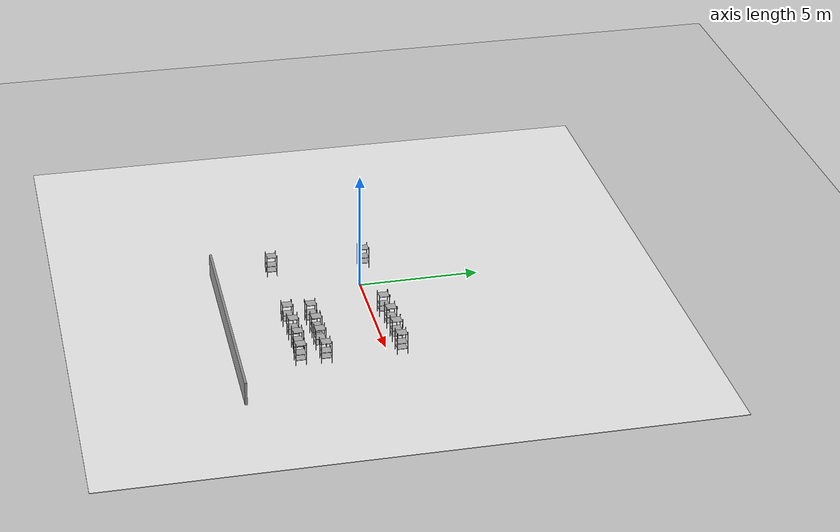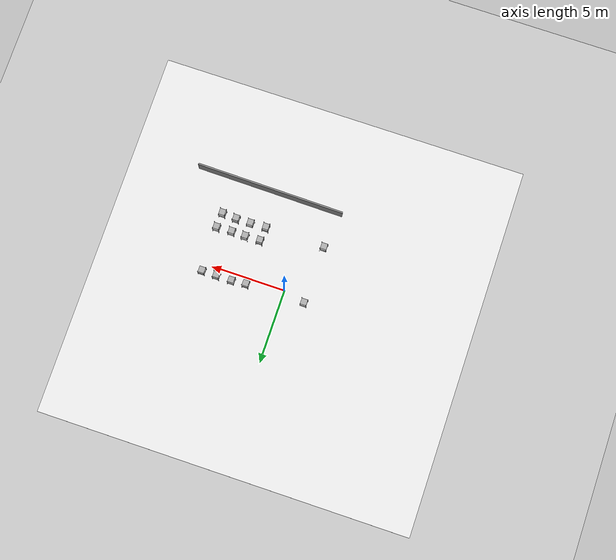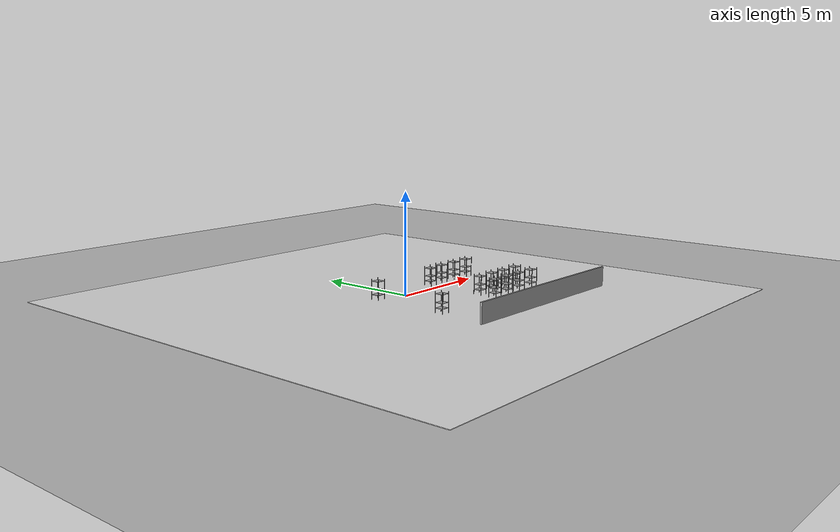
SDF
<sdf version="1.7">
 <world name="default">
  <model name="ground_plane">
   <static>1</static>
   <link name="link">
    <collision name="collision">
     <geometry><plane><normal>0 0 1</normal><size>100 100</size></plane></geometry>
     <surface><friction><ode><mu>100</mu><mu2>50</mu2></ode></friction></surface>
    </collision>
    <visual name="visual">
     <cast_shadows>0</cast_shadows>
     <geometry><plane><normal>0 0 1</normal><size>100 100</size></plane></geometry>
     <material>
      <script><uri>file://media/materials/scripts/gazebo.material</uri><name>Gazebo/Grey</name></script>
     </material>
    </visual>
   </link>
  </model>
  <model name="warehouse_ground">
   <static>1</static>
   <link name="link">
    <pose>0 0 0.01 0 -0 0</pose>
    <collision name="collision">
     <geometry><plane><normal>0 0 1</normal><size>25 25</size></plane></geometry>
     <surface><friction><ode><mu>1</mu><mu2>1</mu2></ode></friction></surface>
    </collision>
    <visual name="visual">
     <geometry><plane><normal>0 0 1</normal><size>25 25</size></plane></geometry>
     <material>
      <ambient>0.95 0.95 0.95 1</ambient>
      <diffuse>0.95 0.95 0.95 1</diffuse>
      <specular>0.1 0.1 0.1 1</specular>
      <emissive>0 0 0 1</emissive>
     </material>
    </visual>
   </link>
  </model>
  <model name="wall_1_clone_clone_clone_0">
   <link name="wall">
    <visual name="visual">
     <geometry><box><size>10 0.1 2</size></box></geometry>
     <material>
      <ambient>0.6 0.6 0.6 1</ambient>
      <shader type="pixel"/>
      <script><name>ModelPreview_1::wall::visual_MATERIAL_</name><uri>__default__</uri></script>
     </material>
    </visual>
    <collision name="collision">
     <geometry><box><size>10 0.1 2</size></box></geometry>
     <surface>
      <friction>
       <ode><mu>1</mu><mu2>1</mu2><fdir1>0 0 0</fdir1><slip1>0</slip1><slip2>0</slip2></ode>
       <torsional>
        <coefficient>1</coefficient>
        <patch_radius>0</patch_radius>
        <surface_radius>0</surface_radius>
        <use_patch_radius>1</use_patch_radius>
        <ode><slip>0</slip></ode>
       </torsional>
      </friction>
      <bounce><restitution_coefficient>0</restitution_coefficient><threshold>1e+06</threshold></bounce>
      <contact>
       <collide_without_contact>0</collide_without_contact>
       <collide_without_contact_bitmask>1</collide_without_contact_bitmask>
       <collide_bitmask>1</collide_bitmask>
       <ode>
        <soft_cfm>0</soft_cfm>
        <soft_erp>0.2</soft_erp>
        <kp>1e+13</kp>
        <kd>1</kd>
        <max_vel>0.01</max_vel>
        <min_depth>0</min_depth>
       </ode>
       <bullet>
        <split_impulse>1</split_impulse>
        <split_impulse_penetration_threshold>-0.01</split_impulse_penetration_threshold>
        <soft_cfm>0</soft_cfm>
        <soft_erp>0.2</soft_erp>
        <kp>1e+13</kp>
        <kd>1</kd>
       </bullet>
      </contact>
     </surface>
    </collision>
   </link>
   <static>1</static>
   <pose>3 -6 0 0 0 -0.012854</pose>
  </model>
  <model name="square_shelf_0_clone_10">
   <link name="link">
    <visual name="bottom_shelf_visual">
     <geometry><box><size>0.4 0.4 0.02</size></box></geometry>
     <pose>0 0 0.25 0 -0 0</pose>
     <material><ambient>0.6 0.6 0.6 1</ambient><diffuse>0.7 0.7 0.7 1</diffuse></material>
    </visual>
    <collision name="bottom_shelf_collision">
     <geometry><box><size>0.4 0.4 0.02</size></box></geometry>
     <pose>0 0 0.25 0 -0 0</pose>
    </collision>
    <visual name="middle_shelf_visual">
     <geometry><box><size>0.4 0.4 0.02</size></box></geometry>
     <pose>0 0 0.5 0 -0 0</pose>
     <material><ambient>0.6 0.6 0.6 1</ambient><diffuse>0.7 0.7 0.7 1</diffuse></material>
    </visual>
    <collision name="middle_shelf_collision">
     <geometry><box><size>0.4 0.4 0.02</size></box></geometry>
     <pose>0 0 0.5 0 -0 0</pose>
    </collision>
    <visual name="top_shelf_visual">
     <geometry><box><size>0.4 0.4 0.02</size></box></geometry>
     <pose>0 0 0.9 0 -0 0</pose>
     <material><ambient>0.6 0.6 0.6 1</ambient><diffuse>0.7 0.7 0.7 1</diffuse></material>
    </visual>
    <collision name="top_shelf_collision">
     <geometry><box><size>0.4 0.4 0.02</size></box></geometry>
     <pose>0 0 0.9 0 -0 0</pose>
    </collision>
    <visual name="left_support_visual">
     <geometry><box><size>0.02 0.02 1</size></box></geometry>
     <pose>-0.21 -0.21 0.5 0 -0 0</pose>
     <material><ambient>0.3 0.3 0.3 1</ambient><diffuse>0.3 0.3 0.3 1</diffuse></material>
    </visual>
    <collision name="left_support_collision">
     <geometry><box><size>0.02 0.02 1</size></box></geometry>
     <pose>-0.21 -0.21 0.5 0 -0 0</pose>
    </collision>
    <visual name="right_support_visual">
     <geometry><box><size>0.02 0.02 1</size></box></geometry>
     <pose>0.21 -0.21 0.5 0 -0 0</pose>
     <material><ambient>0.3 0.3 0.3 1</ambient><diffuse>0.3 0.3 0.3 1</diffuse></material>
    </visual>
    <collision name="right_support_collision">
     <geometry><box><size>0.02 0.02 1</size></box></geometry>
     <pose>0.21 -0.21 0.5 0 -0 0</pose>
    </collision>
    <visual name="front_left_support_visual">
     <geometry><box><size>0.02 0.02 1</size></box></geometry>
     <pose>-0.21 0.21 0.5 0 -0 0</pose>
     <material><ambient>0.3 0.3 0.3 1</ambient><diffuse>0.3 0.3 0.3 1</diffuse></material>
    </visual>
    <collision name="front_left_support_collision">
     <geometry><box><size>0.02 0.02 1</size></box></geometry>
     <pose>-0.21 0.21 0.5 0 -0 0</pose>
    </collision>
    <visual name="front_right_support_visual">
     <geometry><box><size>0.02 0.02 1</size></box></geometry>
     <pose>0.21 0.21 0.5 0 -0 0</pose>
     <material><ambient>0.3 0.3 0.3 1</ambient><diffuse>0.3 0.3 0.3 1</diffuse></material>
    </visual>
    <collision name="front_right_support_collision">
     <geometry><box><size>0.02 0.02 1</size></box></geometry>
     <pose>0.21 0.21 0.5 0 -0 0</pose>
    </collision>
    <inertial>
     <inertia><ixx>1</ixx><ixy>0</ixy><ixz>0</ixz><iyy>1</iyy><iyz>0</iyz><izz>1</izz></inertia>
     <mass>1</mass>
    </inertial>
   </link>
   <pose>-1.46889 0.444983 0.01 0 1e-06 0</pose>
  </model>
  <model name="square_shelf_0_clone_12">
   <link name="link">
    <visual name="bottom_shelf_visual">
     <geometry><box><size>0.4 0.4 0.02</size></box></geometry>
     <pose>0 0 0.25 0 -0 0</pose>
     <material><ambient>0.6 0.6 0.6 1</ambient><diffuse>0.7 0.7 0.7 1</diffuse></material>
    </visual>
    <collision name="bottom_shelf_collision">
     <geometry><box><size>0.4 0.4 0.02</size></box></geometry>
     <pose>0 0 0.25 0 -0 0</pose>
    </collision>
    <visual name="middle_shelf_visual">
     <geometry><box><size>0.4 0.4 0.02</size></box></geometry>
     <pose>0 0 0.5 0 -0 0</pose>
     <material><ambient>0.6 0.6 0.6 1</ambient><diffuse>0.7 0.7 0.7 1</diffuse></material>
    </visual>
    <collision name="middle_shelf_collision">
     <geometry><box><size>0.4 0.4 0.02</size></box></geometry>
     <pose>0 0 0.5 0 -0 0</pose>
    </collision>
    <visual name="top_shelf_visual">
     <geometry><box><size>0.4 0.4 0.02</size></box></geometry>
     <pose>0 0 0.9 0 -0 0</pose>
     <material><ambient>0.6 0.6 0.6 1</ambient><diffuse>0.7 0.7 0.7 1</diffuse></material>
    </visual>
    <collision name="top_shelf_collision">
     <geometry><box><size>0.4 0.4 0.02</size></box></geometry>
     <pose>0 0 0.9 0 -0 0</pose>
    </collision>
    <visual name="left_support_visual">
     <geometry><box><size>0.02 0.02 1</size></box></geometry>
     <pose>-0.21 -0.21 0.5 0 -0 0</pose>
     <material><ambient>0.3 0.3 0.3 1</ambient><diffuse>0.3 0.3 0.3 1</diffuse></material>
    </visual>
    <collision name="left_support_collision">
     <geometry><box><size>0.02 0.02 1</size></box></geometry>
     <pose>-0.21 -0.21 0.5 0 -0 0</pose>
    </collision>
    <visual name="right_support_visual">
     <geometry><box><size>0.02 0.02 1</size></box></geometry>
     <pose>0.21 -0.21 0.5 0 -0 0</pose>
     <material><ambient>0.3 0.3 0.3 1</ambient><diffuse>0.3 0.3 0.3 1</diffuse></material>
    </visual>
    <collision name="right_support_collision">
     <geometry><box><size>0.02 0.02 1</size></box></geometry>
     <pose>0.21 -0.21 0.5 0 -0 0</pose>
    </collision>
    <visual name="front_left_support_visual">
     <geometry><box><size>0.02 0.02 1</size></box></geometry>
     <pose>-0.21 0.21 0.5 0 -0 0</pose>
     <material><ambient>0.3 0.3 0.3 1</ambient><diffuse>0.3 0.3 0.3 1</diffuse></material>
    </visual>
    <collision name="front_left_support_collision">
     <geometry><box><size>0.02 0.02 1</size></box></geometry>
     <pose>-0.21 0.21 0.5 0 -0 0</pose>
    </collision>
    <visual name="front_right_support_visual">
     <geometry><box><size>0.02 0.02 1</size></box></geometry>
     <pose>0.21 0.21 0.5 0 -0 0</pose>
     <material><ambient>0.3 0.3 0.3 1</ambient><diffuse>0.3 0.3 0.3 1</diffuse></material>
    </visual>
    <collision name="front_right_support_collision">
     <geometry><box><size>0.02 0.02 1</size></box></geometry>
     <pose>0.21 0.21 0.5 0 -0 0</pose>
    </collision>
    <inertial>
     <inertia><ixx>1</ixx><ixy>0</ixy><ixz>0</ixz><iyy>1</iyy><iyz>0</iyz><izz>1</izz></inertia>
     <mass>1</mass>
    </inertial>
   </link>
   <pose>-1.54332 -3.45509 0.01 1e-06 -0 0</pose>
  </model>
  <model name="square_shelf_0_clone_13">
   <link name="link">
    <visual name="bottom_shelf_visual">
     <geometry><box><size>0.4 0.4 0.02</size></box></geometry>
     <pose>0 0 0.25 0 -0 0</pose>
     <material><ambient>0.6 0.6 0.6 1</ambient><diffuse>0.7 0.7 0.7 1</diffuse></material>
    </visual>
    <collision name="bottom_shelf_collision">
     <geometry><box><size>0.4 0.4 0.02</size></box></geometry>
     <pose>0 0 0.25 0 -0 0</pose>
    </collision>
    <visual name="middle_shelf_visual">
     <geometry><box><size>0.4 0.4 0.02</size></box></geometry>
     <pose>0 0 0.5 0 -0 0</pose>
     <material><ambient>0.6 0.6 0.6 1</ambient><diffuse>0.7 0.7 0.7 1</diffuse></material>
    </visual>
    <collision name="middle_shelf_collision">
     <geometry><box><size>0.4 0.4 0.02</size></box></geometry>
     <pose>0 0 0.5 0 -0 0</pose>
    </collision>
    <visual name="top_shelf_visual">
     <geometry><box><size>0.4 0.4 0.02</size></box></geometry>
     <pose>0 0 0.9 0 -0 0</pose>
     <material><ambient>0.6 0.6 0.6 1</ambient><diffuse>0.7 0.7 0.7 1</diffuse></material>
    </visual>
    <collision name="top_shelf_collision">
     <geometry><box><size>0.4 0.4 0.02</size></box></geometry>
     <pose>0 0 0.9 0 -0 0</pose>
    </collision>
    <visual name="left_support_visual">
     <geometry><box><size>0.02 0.02 1</size></box></geometry>
     <pose>-0.21 -0.21 0.5 0 -0 0</pose>
     <material><ambient>0.3 0.3 0.3 1</ambient><diffuse>0.3 0.3 0.3 1</diffuse></material>
    </visual>
    <collision name="left_support_collision">
     <geometry><box><size>0.02 0.02 1</size></box></geometry>
     <pose>-0.21 -0.21 0.5 0 -0 0</pose>
    </collision>
    <visual name="right_support_visual">
     <geometry><box><size>0.02 0.02 1</size></box></geometry>
     <pose>0.21 -0.21 0.5 0 -0 0</pose>
     <material><ambient>0.3 0.3 0.3 1</ambient><diffuse>0.3 0.3 0.3 1</diffuse></material>
    </visual>
    <collision name="right_support_collision">
     <geometry><box><size>0.02 0.02 1</size></box></geometry>
     <pose>0.21 -0.21 0.5 0 -0 0</pose>
    </collision>
    <visual name="front_left_support_visual">
     <geometry><box><size>0.02 0.02 1</size></box></geometry>
     <pose>-0.21 0.21 0.5 0 -0 0</pose>
     <material><ambient>0.3 0.3 0.3 1</ambient><diffuse>0.3 0.3 0.3 1</diffuse></material>
    </visual>
    <collision name="front_left_support_collision">
     <geometry><box><size>0.02 0.02 1</size></box></geometry>
     <pose>-0.21 0.21 0.5 0 -0 0</pose>
    </collision>
    <visual name="front_right_support_visual">
     <geometry><box><size>0.02 0.02 1</size></box></geometry>
     <pose>0.21 0.21 0.5 0 -0 0</pose>
     <material><ambient>0.3 0.3 0.3 1</ambient><diffuse>0.3 0.3 0.3 1</diffuse></material>
    </visual>
    <collision name="front_right_support_collision">
     <geometry><box><size>0.02 0.02 1</size></box></geometry>
     <pose>0.21 0.21 0.5 0 -0 0</pose>
    </collision>
    <inertial>
     <inertia><ixx>1</ixx><ixy>0</ixy><ixz>0</ixz><iyy>1</iyy><iyz>0</iyz><izz>1</izz></inertia>
     <mass>1</mass>
    </inertial>
   </link>
   <pose>2.48422 0.468985 0.009991 -1e-06 -0 0</pose>
  </model>
  <model name="square_shelf_0_clone_16">
   <link name="link">
    <visual name="bottom_shelf_visual">
     <geometry><box><size>0.4 0.4 0.02</size></box></geometry>
     <pose>0 0 0.25 0 -0 0</pose>
     <material><ambient>0.6 0.6 0.6 1</ambient><diffuse>0.7 0.7 0.7 1</diffuse></material>
    </visual>
    <collision name="bottom_shelf_collision">
     <geometry><box><size>0.4 0.4 0.02</size></box></geometry>
     <pose>0 0 0.25 0 -0 0</pose>
    </collision>
    <visual name="middle_shelf_visual">
     <geometry><box><size>0.4 0.4 0.02</size></box></geometry>
     <pose>0 0 0.5 0 -0 0</pose>
     <material><ambient>0.6 0.6 0.6 1</ambient><diffuse>0.7 0.7 0.7 1</diffuse></material>
    </visual>
    <collision name="middle_shelf_collision">
     <geometry><box><size>0.4 0.4 0.02</size></box></geometry>
     <pose>0 0 0.5 0 -0 0</pose>
    </collision>
    <visual name="top_shelf_visual">
     <geometry><box><size>0.4 0.4 0.02</size></box></geometry>
     <pose>0 0 0.9 0 -0 0</pose>
     <material><ambient>0.6 0.6 0.6 1</ambient><diffuse>0.7 0.7 0.7 1</diffuse></material>
    </visual>
    <collision name="top_shelf_collision">
     <geometry><box><size>0.4 0.4 0.02</size></box></geometry>
     <pose>0 0 0.9 0 -0 0</pose>
    </collision>
    <visual name="left_support_visual">
     <geometry><box><size>0.02 0.02 1</size></box></geometry>
     <pose>-0.21 -0.21 0.5 0 -0 0</pose>
     <material><ambient>0.3 0.3 0.3 1</ambient><diffuse>0.3 0.3 0.3 1</diffuse></material>
    </visual>
    <collision name="left_support_collision">
     <geometry><box><size>0.02 0.02 1</size></box></geometry>
     <pose>-0.21 -0.21 0.5 0 -0 0</pose>
    </collision>
    <visual name="right_support_visual">
     <geometry><box><size>0.02 0.02 1</size></box></geometry>
     <pose>0.21 -0.21 0.5 0 -0 0</pose>
     <material><ambient>0.3 0.3 0.3 1</ambient><diffuse>0.3 0.3 0.3 1</diffuse></material>
    </visual>
    <collision name="right_support_collision">
     <geometry><box><size>0.02 0.02 1</size></box></geometry>
     <pose>0.21 -0.21 0.5 0 -0 0</pose>
    </collision>
    <visual name="front_left_support_visual">
     <geometry><box><size>0.02 0.02 1</size></box></geometry>
     <pose>-0.21 0.21 0.5 0 -0 0</pose>
     <material><ambient>0.3 0.3 0.3 1</ambient><diffuse>0.3 0.3 0.3 1</diffuse></material>
    </visual>
    <collision name="front_left_support_collision">
     <geometry><box><size>0.02 0.02 1</size></box></geometry>
     <pose>-0.21 0.21 0.5 0 -0 0</pose>
    </collision>
    <visual name="front_right_support_visual">
     <geometry><box><size>0.02 0.02 1</size></box></geometry>
     <pose>0.21 0.21 0.5 0 -0 0</pose>
     <material><ambient>0.3 0.3 0.3 1</ambient><diffuse>0.3 0.3 0.3 1</diffuse></material>
    </visual>
    <collision name="front_right_support_collision">
     <geometry><box><size>0.02 0.02 1</size></box></geometry>
     <pose>0.21 0.21 0.5 0 -0 0</pose>
    </collision>
    <inertial>
     <inertia><ixx>1</ixx><ixy>0</ixy><ixz>0</ixz><iyy>1</iyy><iyz>0</iyz><izz>1</izz></inertia>
     <mass>1</mass>
    </inertial>
   </link>
   <pose>3.44671 0.554479 0.009999 1e-06 -0 0</pose>
  </model>
  <model name="square_shelf_0_clone_17">
   <link name="link">
    <visual name="bottom_shelf_visual">
     <geometry><box><size>0.4 0.4 0.02</size></box></geometry>
     <pose>0 0 0.25 0 -0 0</pose>
     <material><ambient>0.6 0.6 0.6 1</ambient><diffuse>0.7 0.7 0.7 1</diffuse></material>
    </visual>
    <collision name="bottom_shelf_collision">
     <geometry><box><size>0.4 0.4 0.02</size></box></geometry>
     <pose>0 0 0.25 0 -0 0</pose>
    </collision>
    <visual name="middle_shelf_visual">
     <geometry><box><size>0.4 0.4 0.02</size></box></geometry>
     <pose>0 0 0.5 0 -0 0</pose>
     <material><ambient>0.6 0.6 0.6 1</ambient><diffuse>0.7 0.7 0.7 1</diffuse></material>
    </visual>
    <collision name="middle_shelf_collision">
     <geometry><box><size>0.4 0.4 0.02</size></box></geometry>
     <pose>0 0 0.5 0 -0 0</pose>
    </collision>
    <visual name="top_shelf_visual">
     <geometry><box><size>0.4 0.4 0.02</size></box></geometry>
     <pose>0 0 0.9 0 -0 0</pose>
     <material><ambient>0.6 0.6 0.6 1</ambient><diffuse>0.7 0.7 0.7 1</diffuse></material>
    </visual>
    <collision name="top_shelf_collision">
     <geometry><box><size>0.4 0.4 0.02</size></box></geometry>
     <pose>0 0 0.9 0 -0 0</pose>
    </collision>
    <visual name="left_support_visual">
     <geometry><box><size>0.02 0.02 1</size></box></geometry>
     <pose>-0.21 -0.21 0.5 0 -0 0</pose>
     <material><ambient>0.3 0.3 0.3 1</ambient><diffuse>0.3 0.3 0.3 1</diffuse></material>
    </visual>
    <collision name="left_support_collision">
     <geometry><box><size>0.02 0.02 1</size></box></geometry>
     <pose>-0.21 -0.21 0.5 0 -0 0</pose>
    </collision>
    <visual name="right_support_visual">
     <geometry><box><size>0.02 0.02 1</size></box></geometry>
     <pose>0.21 -0.21 0.5 0 -0 0</pose>
     <material><ambient>0.3 0.3 0.3 1</ambient><diffuse>0.3 0.3 0.3 1</diffuse></material>
    </visual>
    <collision name="right_support_collision">
     <geometry><box><size>0.02 0.02 1</size></box></geometry>
     <pose>0.21 -0.21 0.5 0 -0 0</pose>
    </collision>
    <visual name="front_left_support_visual">
     <geometry><box><size>0.02 0.02 1</size></box></geometry>
     <pose>-0.21 0.21 0.5 0 -0 0</pose>
     <material><ambient>0.3 0.3 0.3 1</ambient><diffuse>0.3 0.3 0.3 1</diffuse></material>
    </visual>
    <collision name="front_left_support_collision">
     <geometry><box><size>0.02 0.02 1</size></box></geometry>
     <pose>-0.21 0.21 0.5 0 -0 0</pose>
    </collision>
    <visual name="front_right_support_visual">
     <geometry><box><size>0.02 0.02 1</size></box></geometry>
     <pose>0.21 0.21 0.5 0 -0 0</pose>
     <material><ambient>0.3 0.3 0.3 1</ambient><diffuse>0.3 0.3 0.3 1</diffuse></material>
    </visual>
    <collision name="front_right_support_collision">
     <geometry><box><size>0.02 0.02 1</size></box></geometry>
     <pose>0.21 0.21 0.5 0 -0 0</pose>
    </collision>
    <inertial>
     <inertia><ixx>1</ixx><ixy>0</ixy><ixz>0</ixz><iyy>1</iyy><iyz>0</iyz><izz>1</izz></inertia>
     <mass>1</mass>
    </inertial>
   </link>
   <pose>4.476 0.554236 0.009991 -1e-06 -0 0</pose>
  </model>
  <model name="square_shelf_0_clone_20">
   <link name="link">
    <visual name="bottom_shelf_visual">
     <geometry><box><size>0.4 0.4 0.02</size></box></geometry>
     <pose>0 0 0.25 0 -0 0</pose>
     <material><ambient>0.6 0.6 0.6 1</ambient><diffuse>0.7 0.7 0.7 1</diffuse></material>
    </visual>
    <collision name="bottom_shelf_collision">
     <geometry><box><size>0.4 0.4 0.02</size></box></geometry>
     <pose>0 0 0.25 0 -0 0</pose>
    </collision>
    <visual name="middle_shelf_visual">
     <geometry><box><size>0.4 0.4 0.02</size></box></geometry>
     <pose>0 0 0.5 0 -0 0</pose>
     <material><ambient>0.6 0.6 0.6 1</ambient><diffuse>0.7 0.7 0.7 1</diffuse></material>
    </visual>
    <collision name="middle_shelf_collision">
     <geometry><box><size>0.4 0.4 0.02</size></box></geometry>
     <pose>0 0 0.5 0 -0 0</pose>
    </collision>
    <visual name="top_shelf_visual">
     <geometry><box><size>0.4 0.4 0.02</size></box></geometry>
     <pose>0 0 0.9 0 -0 0</pose>
     <material><ambient>0.6 0.6 0.6 1</ambient><diffuse>0.7 0.7 0.7 1</diffuse></material>
    </visual>
    <collision name="top_shelf_collision">
     <geometry><box><size>0.4 0.4 0.02</size></box></geometry>
     <pose>0 0 0.9 0 -0 0</pose>
    </collision>
    <visual name="left_support_visual">
     <geometry><box><size>0.02 0.02 1</size></box></geometry>
     <pose>-0.21 -0.21 0.5 0 -0 0</pose>
     <material><ambient>0.3 0.3 0.3 1</ambient><diffuse>0.3 0.3 0.3 1</diffuse></material>
    </visual>
    <collision name="left_support_collision">
     <geometry><box><size>0.02 0.02 1</size></box></geometry>
     <pose>-0.21 -0.21 0.5 0 -0 0</pose>
    </collision>
    <visual name="right_support_visual">
     <geometry><box><size>0.02 0.02 1</size></box></geometry>
     <pose>0.21 -0.21 0.5 0 -0 0</pose>
     <material><ambient>0.3 0.3 0.3 1</ambient><diffuse>0.3 0.3 0.3 1</diffuse></material>
    </visual>
    <collision name="right_support_collision">
     <geometry><box><size>0.02 0.02 1</size></box></geometry>
     <pose>0.21 -0.21 0.5 0 -0 0</pose>
    </collision>
    <visual name="front_left_support_visual">
     <geometry><box><size>0.02 0.02 1</size></box></geometry>
     <pose>-0.21 0.21 0.5 0 -0 0</pose>
     <material><ambient>0.3 0.3 0.3 1</ambient><diffuse>0.3 0.3 0.3 1</diffuse></material>
    </visual>
    <collision name="front_left_support_collision">
     <geometry><box><size>0.02 0.02 1</size></box></geometry>
     <pose>-0.21 0.21 0.5 0 -0 0</pose>
    </collision>
    <visual name="front_right_support_visual">
     <geometry><box><size>0.02 0.02 1</size></box></geometry>
     <pose>0.21 0.21 0.5 0 -0 0</pose>
     <material><ambient>0.3 0.3 0.3 1</ambient><diffuse>0.3 0.3 0.3 1</diffuse></material>
    </visual>
    <collision name="front_right_support_collision">
     <geometry><box><size>0.02 0.02 1</size></box></geometry>
     <pose>0.21 0.21 0.5 0 -0 0</pose>
    </collision>
    <inertial>
     <inertia><ixx>1</ixx><ixy>0</ixy><ixz>0</ixz><iyy>1</iyy><iyz>0</iyz><izz>1</izz></inertia>
     <mass>1</mass>
    </inertial>
   </link>
   <pose>5.46658 0.548354 0.01 1e-06 -0 0</pose>
  </model>
  <model name="square_shelf_0_clone_29">
   <link name="link">
    <visual name="bottom_shelf_visual">
     <geometry><box><size>0.4 0.4 0.02</size></box></geometry>
     <pose>0 0 0.25 0 -0 0</pose>
     <material><ambient>0.6 0.6 0.6 1</ambient><diffuse>0.7 0.7 0.7 1</diffuse></material>
    </visual>
    <collision name="bottom_shelf_collision">
     <geometry><box><size>0.4 0.4 0.02</size></box></geometry>
     <pose>0 0 0.25 0 -0 0</pose>
    </collision>
    <visual name="middle_shelf_visual">
     <geometry><box><size>0.4 0.4 0.02</size></box></geometry>
     <pose>0 0 0.5 0 -0 0</pose>
     <material><ambient>0.6 0.6 0.6 1</ambient><diffuse>0.7 0.7 0.7 1</diffuse></material>
    </visual>
    <collision name="middle_shelf_collision">
     <geometry><box><size>0.4 0.4 0.02</size></box></geometry>
     <pose>0 0 0.5 0 -0 0</pose>
    </collision>
    <visual name="top_shelf_visual">
     <geometry><box><size>0.4 0.4 0.02</size></box></geometry>
     <pose>0 0 0.9 0 -0 0</pose>
     <material><ambient>0.6 0.6 0.6 1</ambient><diffuse>0.7 0.7 0.7 1</diffuse></material>
    </visual>
    <collision name="top_shelf_collision">
     <geometry><box><size>0.4 0.4 0.02</size></box></geometry>
     <pose>0 0 0.9 0 -0 0</pose>
    </collision>
    <visual name="left_support_visual">
     <geometry><box><size>0.02 0.02 1</size></box></geometry>
     <pose>-0.21 -0.21 0.5 0 -0 0</pose>
     <material><ambient>0.3 0.3 0.3 1</ambient><diffuse>0.3 0.3 0.3 1</diffuse></material>
    </visual>
    <collision name="left_support_collision">
     <geometry><box><size>0.02 0.02 1</size></box></geometry>
     <pose>-0.21 -0.21 0.5 0 -0 0</pose>
    </collision>
    <visual name="right_support_visual">
     <geometry><box><size>0.02 0.02 1</size></box></geometry>
     <pose>0.21 -0.21 0.5 0 -0 0</pose>
     <material><ambient>0.3 0.3 0.3 1</ambient><diffuse>0.3 0.3 0.3 1</diffuse></material>
    </visual>
    <collision name="right_support_collision">
     <geometry><box><size>0.02 0.02 1</size></box></geometry>
     <pose>0.21 -0.21 0.5 0 -0 0</pose>
    </collision>
    <visual name="front_left_support_visual">
     <geometry><box><size>0.02 0.02 1</size></box></geometry>
     <pose>-0.21 0.21 0.5 0 -0 0</pose>
     <material><ambient>0.3 0.3 0.3 1</ambient><diffuse>0.3 0.3 0.3 1</diffuse></material>
    </visual>
    <collision name="front_left_support_collision">
     <geometry><box><size>0.02 0.02 1</size></box></geometry>
     <pose>-0.21 0.21 0.5 0 -0 0</pose>
    </collision>
    <visual name="front_right_support_visual">
     <geometry><box><size>0.02 0.02 1</size></box></geometry>
     <pose>0.21 0.21 0.5 0 -0 0</pose>
     <material><ambient>0.3 0.3 0.3 1</ambient><diffuse>0.3 0.3 0.3 1</diffuse></material>
    </visual>
    <collision name="front_right_support_collision">
     <geometry><box><size>0.02 0.02 1</size></box></geometry>
     <pose>0.21 0.21 0.5 0 -0 0</pose>
    </collision>
    <inertial>
     <inertia><ixx>1</ixx><ixy>0</ixy><ixz>0</ixz><iyy>1</iyy><iyz>0</iyz><izz>1</izz></inertia>
     <mass>1</mass>
    </inertial>
   </link>
   <pose>2.4619 -3.49437 0.009991 0 -1e-06 0</pose>
  </model>
  <model name="square_shelf_0_clone_30">
   <link name="link">
    <visual name="bottom_shelf_visual">
     <geometry><box><size>0.4 0.4 0.02</size></box></geometry>
     <pose>0 0 0.25 0 -0 0</pose>
     <material><ambient>0.6 0.6 0.6 1</ambient><diffuse>0.7 0.7 0.7 1</diffuse></material>
    </visual>
    <collision name="bottom_shelf_collision">
     <geometry><box><size>0.4 0.4 0.02</size></box></geometry>
     <pose>0 0 0.25 0 -0 0</pose>
    </collision>
    <visual name="middle_shelf_visual">
     <geometry><box><size>0.4 0.4 0.02</size></box></geometry>
     <pose>0 0 0.5 0 -0 0</pose>
     <material><ambient>0.6 0.6 0.6 1</ambient><diffuse>0.7 0.7 0.7 1</diffuse></material>
    </visual>
    <collision name="middle_shelf_collision">
     <geometry><box><size>0.4 0.4 0.02</size></box></geometry>
     <pose>0 0 0.5 0 -0 0</pose>
    </collision>
    <visual name="top_shelf_visual">
     <geometry><box><size>0.4 0.4 0.02</size></box></geometry>
     <pose>0 0 0.9 0 -0 0</pose>
     <material><ambient>0.6 0.6 0.6 1</ambient><diffuse>0.7 0.7 0.7 1</diffuse></material>
    </visual>
    <collision name="top_shelf_collision">
     <geometry><box><size>0.4 0.4 0.02</size></box></geometry>
     <pose>0 0 0.9 0 -0 0</pose>
    </collision>
    <visual name="left_support_visual">
     <geometry><box><size>0.02 0.02 1</size></box></geometry>
     <pose>-0.21 -0.21 0.5 0 -0 0</pose>
     <material><ambient>0.3 0.3 0.3 1</ambient><diffuse>0.3 0.3 0.3 1</diffuse></material>
    </visual>
    <collision name="left_support_collision">
     <geometry><box><size>0.02 0.02 1</size></box></geometry>
     <pose>-0.21 -0.21 0.5 0 -0 0</pose>
    </collision>
    <visual name="right_support_visual">
     <geometry><box><size>0.02 0.02 1</size></box></geometry>
     <pose>0.21 -0.21 0.5 0 -0 0</pose>
     <material><ambient>0.3 0.3 0.3 1</ambient><diffuse>0.3 0.3 0.3 1</diffuse></material>
    </visual>
    <collision name="right_support_collision">
     <geometry><box><size>0.02 0.02 1</size></box></geometry>
     <pose>0.21 -0.21 0.5 0 -0 0</pose>
    </collision>
    <visual name="front_left_support_visual">
     <geometry><box><size>0.02 0.02 1</size></box></geometry>
     <pose>-0.21 0.21 0.5 0 -0 0</pose>
     <material><ambient>0.3 0.3 0.3 1</ambient><diffuse>0.3 0.3 0.3 1</diffuse></material>
    </visual>
    <collision name="front_left_support_collision">
     <geometry><box><size>0.02 0.02 1</size></box></geometry>
     <pose>-0.21 0.21 0.5 0 -0 0</pose>
    </collision>
    <visual name="front_right_support_visual">
     <geometry><box><size>0.02 0.02 1</size></box></geometry>
     <pose>0.21 0.21 0.5 0 -0 0</pose>
     <material><ambient>0.3 0.3 0.3 1</ambient><diffuse>0.3 0.3 0.3 1</diffuse></material>
    </visual>
    <collision name="front_right_support_collision">
     <geometry><box><size>0.02 0.02 1</size></box></geometry>
     <pose>0.21 0.21 0.5 0 -0 0</pose>
    </collision>
    <inertial>
     <inertia><ixx>1</ixx><ixy>0</ixy><ixz>0</ixz><iyy>1</iyy><iyz>0</iyz><izz>1</izz></inertia>
     <mass>1</mass>
    </inertial>
   </link>
   <pose>2.55314 -2.54539 0.009999 1e-06 -0 0</pose>
  </model>
  <model name="square_shelf_0_clone_31">
   <link name="link">
    <visual name="bottom_shelf_visual">
     <geometry><box><size>0.4 0.4 0.02</size></box></geometry>
     <pose>0 0 0.25 0 -0 0</pose>
     <material><ambient>0.6 0.6 0.6 1</ambient><diffuse>0.7 0.7 0.7 1</diffuse></material>
    </visual>
    <collision name="bottom_shelf_collision">
     <geometry><box><size>0.4 0.4 0.02</size></box></geometry>
     <pose>0 0 0.25 0 -0 0</pose>
    </collision>
    <visual name="middle_shelf_visual">
     <geometry><box><size>0.4 0.4 0.02</size></box></geometry>
     <pose>0 0 0.5 0 -0 0</pose>
     <material><ambient>0.6 0.6 0.6 1</ambient><diffuse>0.7 0.7 0.7 1</diffuse></material>
    </visual>
    <collision name="middle_shelf_collision">
     <geometry><box><size>0.4 0.4 0.02</size></box></geometry>
     <pose>0 0 0.5 0 -0 0</pose>
    </collision>
    <visual name="top_shelf_visual">
     <geometry><box><size>0.4 0.4 0.02</size></box></geometry>
     <pose>0 0 0.9 0 -0 0</pose>
     <material><ambient>0.6 0.6 0.6 1</ambient><diffuse>0.7 0.7 0.7 1</diffuse></material>
    </visual>
    <collision name="top_shelf_collision">
     <geometry><box><size>0.4 0.4 0.02</size></box></geometry>
     <pose>0 0 0.9 0 -0 0</pose>
    </collision>
    <visual name="left_support_visual">
     <geometry><box><size>0.02 0.02 1</size></box></geometry>
     <pose>-0.21 -0.21 0.5 0 -0 0</pose>
     <material><ambient>0.3 0.3 0.3 1</ambient><diffuse>0.3 0.3 0.3 1</diffuse></material>
    </visual>
    <collision name="left_support_collision">
     <geometry><box><size>0.02 0.02 1</size></box></geometry>
     <pose>-0.21 -0.21 0.5 0 -0 0</pose>
    </collision>
    <visual name="right_support_visual">
     <geometry><box><size>0.02 0.02 1</size></box></geometry>
     <pose>0.21 -0.21 0.5 0 -0 0</pose>
     <material><ambient>0.3 0.3 0.3 1</ambient><diffuse>0.3 0.3 0.3 1</diffuse></material>
    </visual>
    <collision name="right_support_collision">
     <geometry><box><size>0.02 0.02 1</size></box></geometry>
     <pose>0.21 -0.21 0.5 0 -0 0</pose>
    </collision>
    <visual name="front_left_support_visual">
     <geometry><box><size>0.02 0.02 1</size></box></geometry>
     <pose>-0.21 0.21 0.5 0 -0 0</pose>
     <material><ambient>0.3 0.3 0.3 1</ambient><diffuse>0.3 0.3 0.3 1</diffuse></material>
    </visual>
    <collision name="front_left_support_collision">
     <geometry><box><size>0.02 0.02 1</size></box></geometry>
     <pose>-0.21 0.21 0.5 0 -0 0</pose>
    </collision>
    <visual name="front_right_support_visual">
     <geometry><box><size>0.02 0.02 1</size></box></geometry>
     <pose>0.21 0.21 0.5 0 -0 0</pose>
     <material><ambient>0.3 0.3 0.3 1</ambient><diffuse>0.3 0.3 0.3 1</diffuse></material>
    </visual>
    <collision name="front_right_support_collision">
     <geometry><box><size>0.02 0.02 1</size></box></geometry>
     <pose>0.21 0.21 0.5 0 -0 0</pose>
    </collision>
    <inertial>
     <inertia><ixx>1</ixx><ixy>0</ixy><ixz>0</ixz><iyy>1</iyy><iyz>0</iyz><izz>1</izz></inertia>
     <mass>1</mass>
    </inertial>
   </link>
   <pose>3.5082 -3.44964 0.009999 1e-06 -0 0</pose>
  </model>
  <model name="square_shelf_0_clone_32">
   <link name="link">
    <visual name="bottom_shelf_visual">
     <geometry><box><size>0.4 0.4 0.02</size></box></geometry>
     <pose>0 0 0.25 0 -0 0</pose>
     <material><ambient>0.6 0.6 0.6 1</ambient><diffuse>0.7 0.7 0.7 1</diffuse></material>
    </visual>
    <collision name="bottom_shelf_collision">
     <geometry><box><size>0.4 0.4 0.02</size></box></geometry>
     <pose>0 0 0.25 0 -0 0</pose>
    </collision>
    <visual name="middle_shelf_visual">
     <geometry><box><size>0.4 0.4 0.02</size></box></geometry>
     <pose>0 0 0.5 0 -0 0</pose>
     <material><ambient>0.6 0.6 0.6 1</ambient><diffuse>0.7 0.7 0.7 1</diffuse></material>
    </visual>
    <collision name="middle_shelf_collision">
     <geometry><box><size>0.4 0.4 0.02</size></box></geometry>
     <pose>0 0 0.5 0 -0 0</pose>
    </collision>
    <visual name="top_shelf_visual">
     <geometry><box><size>0.4 0.4 0.02</size></box></geometry>
     <pose>0 0 0.9 0 -0 0</pose>
     <material><ambient>0.6 0.6 0.6 1</ambient><diffuse>0.7 0.7 0.7 1</diffuse></material>
    </visual>
    <collision name="top_shelf_collision">
     <geometry><box><size>0.4 0.4 0.02</size></box></geometry>
     <pose>0 0 0.9 0 -0 0</pose>
    </collision>
    <visual name="left_support_visual">
     <geometry><box><size>0.02 0.02 1</size></box></geometry>
     <pose>-0.21 -0.21 0.5 0 -0 0</pose>
     <material><ambient>0.3 0.3 0.3 1</ambient><diffuse>0.3 0.3 0.3 1</diffuse></material>
    </visual>
    <collision name="left_support_collision">
     <geometry><box><size>0.02 0.02 1</size></box></geometry>
     <pose>-0.21 -0.21 0.5 0 -0 0</pose>
    </collision>
    <visual name="right_support_visual">
     <geometry><box><size>0.02 0.02 1</size></box></geometry>
     <pose>0.21 -0.21 0.5 0 -0 0</pose>
     <material><ambient>0.3 0.3 0.3 1</ambient><diffuse>0.3 0.3 0.3 1</diffuse></material>
    </visual>
    <collision name="right_support_collision">
     <geometry><box><size>0.02 0.02 1</size></box></geometry>
     <pose>0.21 -0.21 0.5 0 -0 0</pose>
    </collision>
    <visual name="front_left_support_visual">
     <geometry><box><size>0.02 0.02 1</size></box></geometry>
     <pose>-0.21 0.21 0.5 0 -0 0</pose>
     <material><ambient>0.3 0.3 0.3 1</ambient><diffuse>0.3 0.3 0.3 1</diffuse></material>
    </visual>
    <collision name="front_left_support_collision">
     <geometry><box><size>0.02 0.02 1</size></box></geometry>
     <pose>-0.21 0.21 0.5 0 -0 0</pose>
    </collision>
    <visual name="front_right_support_visual">
     <geometry><box><size>0.02 0.02 1</size></box></geometry>
     <pose>0.21 0.21 0.5 0 -0 0</pose>
     <material><ambient>0.3 0.3 0.3 1</ambient><diffuse>0.3 0.3 0.3 1</diffuse></material>
    </visual>
    <collision name="front_right_support_collision">
     <geometry><box><size>0.02 0.02 1</size></box></geometry>
     <pose>0.21 0.21 0.5 0 -0 0</pose>
    </collision>
    <inertial>
     <inertia><ixx>1</ixx><ixy>0</ixy><ixz>0</ixz><iyy>1</iyy><iyz>0</iyz><izz>1</izz></inertia>
     <mass>1</mass>
    </inertial>
   </link>
   <pose>3.56393 -2.51964 0.01 1e-06 -0 0</pose>
  </model>
  <model name="square_shelf_0_clone_33">
   <link name="link">
    <visual name="bottom_shelf_visual">
     <geometry><box><size>0.4 0.4 0.02</size></box></geometry>
     <pose>0 0 0.25 0 -0 0</pose>
     <material><ambient>0.6 0.6 0.6 1</ambient><diffuse>0.7 0.7 0.7 1</diffuse></material>
    </visual>
    <collision name="bottom_shelf_collision">
     <geometry><box><size>0.4 0.4 0.02</size></box></geometry>
     <pose>0 0 0.25 0 -0 0</pose>
    </collision>
    <visual name="middle_shelf_visual">
     <geometry><box><size>0.4 0.4 0.02</size></box></geometry>
     <pose>0 0 0.5 0 -0 0</pose>
     <material><ambient>0.6 0.6 0.6 1</ambient><diffuse>0.7 0.7 0.7 1</diffuse></material>
    </visual>
    <collision name="middle_shelf_collision">
     <geometry><box><size>0.4 0.4 0.02</size></box></geometry>
     <pose>0 0 0.5 0 -0 0</pose>
    </collision>
    <visual name="top_shelf_visual">
     <geometry><box><size>0.4 0.4 0.02</size></box></geometry>
     <pose>0 0 0.9 0 -0 0</pose>
     <material><ambient>0.6 0.6 0.6 1</ambient><diffuse>0.7 0.7 0.7 1</diffuse></material>
    </visual>
    <collision name="top_shelf_collision">
     <geometry><box><size>0.4 0.4 0.02</size></box></geometry>
     <pose>0 0 0.9 0 -0 0</pose>
    </collision>
    <visual name="left_support_visual">
     <geometry><box><size>0.02 0.02 1</size></box></geometry>
     <pose>-0.21 -0.21 0.5 0 -0 0</pose>
     <material><ambient>0.3 0.3 0.3 1</ambient><diffuse>0.3 0.3 0.3 1</diffuse></material>
    </visual>
    <collision name="left_support_collision">
     <geometry><box><size>0.02 0.02 1</size></box></geometry>
     <pose>-0.21 -0.21 0.5 0 -0 0</pose>
    </collision>
    <visual name="right_support_visual">
     <geometry><box><size>0.02 0.02 1</size></box></geometry>
     <pose>0.21 -0.21 0.5 0 -0 0</pose>
     <material><ambient>0.3 0.3 0.3 1</ambient><diffuse>0.3 0.3 0.3 1</diffuse></material>
    </visual>
    <collision name="right_support_collision">
     <geometry><box><size>0.02 0.02 1</size></box></geometry>
     <pose>0.21 -0.21 0.5 0 -0 0</pose>
    </collision>
    <visual name="front_left_support_visual">
     <geometry><box><size>0.02 0.02 1</size></box></geometry>
     <pose>-0.21 0.21 0.5 0 -0 0</pose>
     <material><ambient>0.3 0.3 0.3 1</ambient><diffuse>0.3 0.3 0.3 1</diffuse></material>
    </visual>
    <collision name="front_left_support_collision">
     <geometry><box><size>0.02 0.02 1</size></box></geometry>
     <pose>-0.21 0.21 0.5 0 -0 0</pose>
    </collision>
    <visual name="front_right_support_visual">
     <geometry><box><size>0.02 0.02 1</size></box></geometry>
     <pose>0.21 0.21 0.5 0 -0 0</pose>
     <material><ambient>0.3 0.3 0.3 1</ambient><diffuse>0.3 0.3 0.3 1</diffuse></material>
    </visual>
    <collision name="front_right_support_collision">
     <geometry><box><size>0.02 0.02 1</size></box></geometry>
     <pose>0.21 0.21 0.5 0 -0 0</pose>
    </collision>
    <inertial>
     <inertia><ixx>1</ixx><ixy>0</ixy><ixz>0</ixz><iyy>1</iyy><iyz>0</iyz><izz>1</izz></inertia>
     <mass>1</mass>
    </inertial>
   </link>
   <pose>4.49365 -3.43715 0.009999 1e-06 -0 0</pose>
  </model>
  <model name="square_shelf_0_clone_34">
   <link name="link">
    <visual name="bottom_shelf_visual">
     <geometry><box><size>0.4 0.4 0.02</size></box></geometry>
     <pose>0 0 0.25 0 -0 0</pose>
     <material><ambient>0.6 0.6 0.6 1</ambient><diffuse>0.7 0.7 0.7 1</diffuse></material>
    </visual>
    <collision name="bottom_shelf_collision">
     <geometry><box><size>0.4 0.4 0.02</size></box></geometry>
     <pose>0 0 0.25 0 -0 0</pose>
    </collision>
    <visual name="middle_shelf_visual">
     <geometry><box><size>0.4 0.4 0.02</size></box></geometry>
     <pose>0 0 0.5 0 -0 0</pose>
     <material><ambient>0.6 0.6 0.6 1</ambient><diffuse>0.7 0.7 0.7 1</diffuse></material>
    </visual>
    <collision name="middle_shelf_collision">
     <geometry><box><size>0.4 0.4 0.02</size></box></geometry>
     <pose>0 0 0.5 0 -0 0</pose>
    </collision>
    <visual name="top_shelf_visual">
     <geometry><box><size>0.4 0.4 0.02</size></box></geometry>
     <pose>0 0 0.9 0 -0 0</pose>
     <material><ambient>0.6 0.6 0.6 1</ambient><diffuse>0.7 0.7 0.7 1</diffuse></material>
    </visual>
    <collision name="top_shelf_collision">
     <geometry><box><size>0.4 0.4 0.02</size></box></geometry>
     <pose>0 0 0.9 0 -0 0</pose>
    </collision>
    <visual name="left_support_visual">
     <geometry><box><size>0.02 0.02 1</size></box></geometry>
     <pose>-0.21 -0.21 0.5 0 -0 0</pose>
     <material><ambient>0.3 0.3 0.3 1</ambient><diffuse>0.3 0.3 0.3 1</diffuse></material>
    </visual>
    <collision name="left_support_collision">
     <geometry><box><size>0.02 0.02 1</size></box></geometry>
     <pose>-0.21 -0.21 0.5 0 -0 0</pose>
    </collision>
    <visual name="right_support_visual">
     <geometry><box><size>0.02 0.02 1</size></box></geometry>
     <pose>0.21 -0.21 0.5 0 -0 0</pose>
     <material><ambient>0.3 0.3 0.3 1</ambient><diffuse>0.3 0.3 0.3 1</diffuse></material>
    </visual>
    <collision name="right_support_collision">
     <geometry><box><size>0.02 0.02 1</size></box></geometry>
     <pose>0.21 -0.21 0.5 0 -0 0</pose>
    </collision>
    <visual name="front_left_support_visual">
     <geometry><box><size>0.02 0.02 1</size></box></geometry>
     <pose>-0.21 0.21 0.5 0 -0 0</pose>
     <material><ambient>0.3 0.3 0.3 1</ambient><diffuse>0.3 0.3 0.3 1</diffuse></material>
    </visual>
    <collision name="front_left_support_collision">
     <geometry><box><size>0.02 0.02 1</size></box></geometry>
     <pose>-0.21 0.21 0.5 0 -0 0</pose>
    </collision>
    <visual name="front_right_support_visual">
     <geometry><box><size>0.02 0.02 1</size></box></geometry>
     <pose>0.21 0.21 0.5 0 -0 0</pose>
     <material><ambient>0.3 0.3 0.3 1</ambient><diffuse>0.3 0.3 0.3 1</diffuse></material>
    </visual>
    <collision name="front_right_support_collision">
     <geometry><box><size>0.02 0.02 1</size></box></geometry>
     <pose>0.21 0.21 0.5 0 -0 0</pose>
    </collision>
    <inertial>
     <inertia><ixx>1</ixx><ixy>0</ixy><ixz>0</ixz><iyy>1</iyy><iyz>0</iyz><izz>1</izz></inertia>
     <mass>1</mass>
    </inertial>
   </link>
   <pose>4.48657 -2.53582 0.009991 -1e-06 -0 0</pose>
  </model>
  <model name="square_shelf_0_clone_35">
   <link name="link">
    <visual name="bottom_shelf_visual">
     <geometry><box><size>0.4 0.4 0.02</size></box></geometry>
     <pose>0 0 0.25 0 -0 0</pose>
     <material><ambient>0.6 0.6 0.6 1</ambient><diffuse>0.7 0.7 0.7 1</diffuse></material>
    </visual>
    <collision name="bottom_shelf_collision">
     <geometry><box><size>0.4 0.4 0.02</size></box></geometry>
     <pose>0 0 0.25 0 -0 0</pose>
    </collision>
    <visual name="middle_shelf_visual">
     <geometry><box><size>0.4 0.4 0.02</size></box></geometry>
     <pose>0 0 0.5 0 -0 0</pose>
     <material><ambient>0.6 0.6 0.6 1</ambient><diffuse>0.7 0.7 0.7 1</diffuse></material>
    </visual>
    <collision name="middle_shelf_collision">
     <geometry><box><size>0.4 0.4 0.02</size></box></geometry>
     <pose>0 0 0.5 0 -0 0</pose>
    </collision>
    <visual name="top_shelf_visual">
     <geometry><box><size>0.4 0.4 0.02</size></box></geometry>
     <pose>0 0 0.9 0 -0 0</pose>
     <material><ambient>0.6 0.6 0.6 1</ambient><diffuse>0.7 0.7 0.7 1</diffuse></material>
    </visual>
    <collision name="top_shelf_collision">
     <geometry><box><size>0.4 0.4 0.02</size></box></geometry>
     <pose>0 0 0.9 0 -0 0</pose>
    </collision>
    <visual name="left_support_visual">
     <geometry><box><size>0.02 0.02 1</size></box></geometry>
     <pose>-0.21 -0.21 0.5 0 -0 0</pose>
     <material><ambient>0.3 0.3 0.3 1</ambient><diffuse>0.3 0.3 0.3 1</diffuse></material>
    </visual>
    <collision name="left_support_collision">
     <geometry><box><size>0.02 0.02 1</size></box></geometry>
     <pose>-0.21 -0.21 0.5 0 -0 0</pose>
    </collision>
    <visual name="right_support_visual">
     <geometry><box><size>0.02 0.02 1</size></box></geometry>
     <pose>0.21 -0.21 0.5 0 -0 0</pose>
     <material><ambient>0.3 0.3 0.3 1</ambient><diffuse>0.3 0.3 0.3 1</diffuse></material>
    </visual>
    <collision name="right_support_collision">
     <geometry><box><size>0.02 0.02 1</size></box></geometry>
     <pose>0.21 -0.21 0.5 0 -0 0</pose>
    </collision>
    <visual name="front_left_support_visual">
     <geometry><box><size>0.02 0.02 1</size></box></geometry>
     <pose>-0.21 0.21 0.5 0 -0 0</pose>
     <material><ambient>0.3 0.3 0.3 1</ambient><diffuse>0.3 0.3 0.3 1</diffuse></material>
    </visual>
    <collision name="front_left_support_collision">
     <geometry><box><size>0.02 0.02 1</size></box></geometry>
     <pose>-0.21 0.21 0.5 0 -0 0</pose>
    </collision>
    <visual name="front_right_support_visual">
     <geometry><box><size>0.02 0.02 1</size></box></geometry>
     <pose>0.21 0.21 0.5 0 -0 0</pose>
     <material><ambient>0.3 0.3 0.3 1</ambient><diffuse>0.3 0.3 0.3 1</diffuse></material>
    </visual>
    <collision name="front_right_support_collision">
     <geometry><box><size>0.02 0.02 1</size></box></geometry>
     <pose>0.21 0.21 0.5 0 -0 0</pose>
    </collision>
    <inertial>
     <inertia><ixx>1</ixx><ixy>0</ixy><ixz>0</ixz><iyy>1</iyy><iyz>0</iyz><izz>1</izz></inertia>
     <mass>1</mass>
    </inertial>
   </link>
   <pose>5.5174 -2.49673 0.009991 -1e-06 -0 0</pose>
  </model>
  <model name="square_shelf_0_clone_36">
   <link name="link">
    <visual name="bottom_shelf_visual">
     <geometry><box><size>0.4 0.4 0.02</size></box></geometry>
     <pose>0 0 0.25 0 -0 0</pose>
     <material><ambient>0.6 0.6 0.6 1</ambient><diffuse>0.7 0.7 0.7 1</diffuse></material>
    </visual>
    <collision name="bottom_shelf_collision">
     <geometry><box><size>0.4 0.4 0.02</size></box></geometry>
     <pose>0 0 0.25 0 -0 0</pose>
    </collision>
    <visual name="middle_shelf_visual">
     <geometry><box><size>0.4 0.4 0.02</size></box></geometry>
     <pose>0 0 0.5 0 -0 0</pose>
     <material><ambient>0.6 0.6 0.6 1</ambient><diffuse>0.7 0.7 0.7 1</diffuse></material>
    </visual>
    <collision name="middle_shelf_collision">
     <geometry><box><size>0.4 0.4 0.02</size></box></geometry>
     <pose>0 0 0.5 0 -0 0</pose>
    </collision>
    <visual name="top_shelf_visual">
     <geometry><box><size>0.4 0.4 0.02</size></box></geometry>
     <pose>0 0 0.9 0 -0 0</pose>
     <material><ambient>0.6 0.6 0.6 1</ambient><diffuse>0.7 0.7 0.7 1</diffuse></material>
    </visual>
    <collision name="top_shelf_collision">
     <geometry><box><size>0.4 0.4 0.02</size></box></geometry>
     <pose>0 0 0.9 0 -0 0</pose>
    </collision>
    <visual name="left_support_visual">
     <geometry><box><size>0.02 0.02 1</size></box></geometry>
     <pose>-0.21 -0.21 0.5 0 -0 0</pose>
     <material><ambient>0.3 0.3 0.3 1</ambient><diffuse>0.3 0.3 0.3 1</diffuse></material>
    </visual>
    <collision name="left_support_collision">
     <geometry><box><size>0.02 0.02 1</size></box></geometry>
     <pose>-0.21 -0.21 0.5 0 -0 0</pose>
    </collision>
    <visual name="right_support_visual">
     <geometry><box><size>0.02 0.02 1</size></box></geometry>
     <pose>0.21 -0.21 0.5 0 -0 0</pose>
     <material><ambient>0.3 0.3 0.3 1</ambient><diffuse>0.3 0.3 0.3 1</diffuse></material>
    </visual>
    <collision name="right_support_collision">
     <geometry><box><size>0.02 0.02 1</size></box></geometry>
     <pose>0.21 -0.21 0.5 0 -0 0</pose>
    </collision>
    <visual name="front_left_support_visual">
     <geometry><box><size>0.02 0.02 1</size></box></geometry>
     <pose>-0.21 0.21 0.5 0 -0 0</pose>
     <material><ambient>0.3 0.3 0.3 1</ambient><diffuse>0.3 0.3 0.3 1</diffuse></material>
    </visual>
    <collision name="front_left_support_collision">
     <geometry><box><size>0.02 0.02 1</size></box></geometry>
     <pose>-0.21 0.21 0.5 0 -0 0</pose>
    </collision>
    <visual name="front_right_support_visual">
     <geometry><box><size>0.02 0.02 1</size></box></geometry>
     <pose>0.21 0.21 0.5 0 -0 0</pose>
     <material><ambient>0.3 0.3 0.3 1</ambient><diffuse>0.3 0.3 0.3 1</diffuse></material>
    </visual>
    <collision name="front_right_support_collision">
     <geometry><box><size>0.02 0.02 1</size></box></geometry>
     <pose>0.21 0.21 0.5 0 -0 0</pose>
    </collision>
    <inertial>
     <inertia><ixx>1</ixx><ixy>0</ixy><ixz>0</ixz><iyy>1</iyy><iyz>0</iyz><izz>1</izz></inertia>
     <mass>1</mass>
    </inertial>
   </link>
   <pose>5.46293 -3.50861 0.009991 -1e-06 -0 0</pose>
  </model>
 </world>
</sdf>
